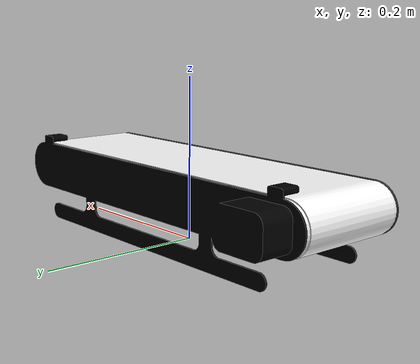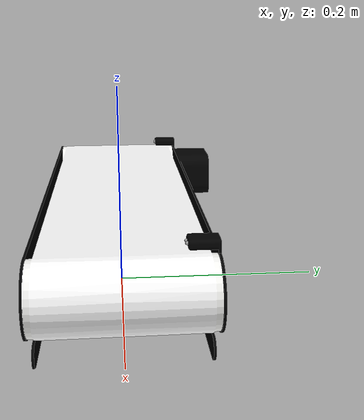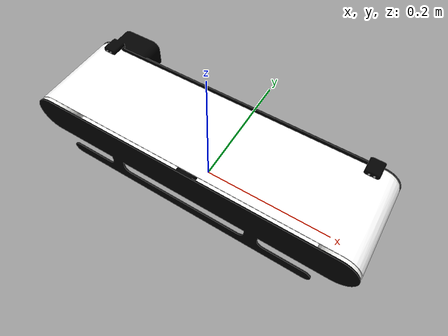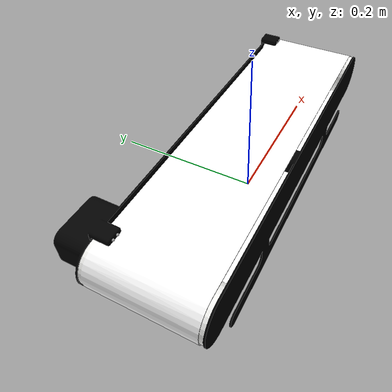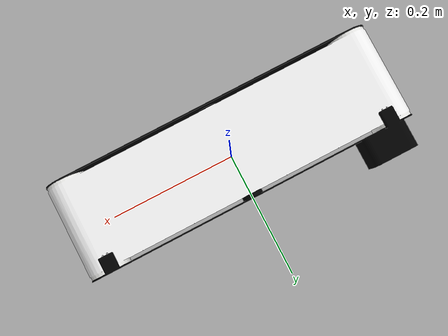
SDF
<?xml version="1.0" ?>
<sdf version="1.4">

    <model name="conveyor_belt">

        <model name="conveyorbelt_fixed">

            <static>true</static>

            <link name="belt_visual">
                <visual name="visual">
                    <geometry>
                        <mesh>
                            <scale>1 1 1</scale>
                            <uri>model://conveyor_belt/meshes/conveyor_belt.dae</uri>
                        </mesh>
                    </geometry>
                </visual>
                <collision name="collision">
                    <origin xyz="0.0 0.0 0" rpy="0.0 0.0 0.0"/>
                    <geometry>
                        <mesh>
                            <scale>1 1 1</scale>
                            <uri>model://conveyor_belt/meshes/conveyor_belt.dae</uri>
                        </mesh>
                    </geometry>
                </collision>
            </link>

        </model>

        <model name="conveyorbelt_moving">

            <allow_auto_disable>0</allow_auto_disable>
            <static>false</static>

            <pose>0 0 0.105 0 0 1.57</pose>

            <link name="belt_moving">
                <inertial>
                    <mass>100.0</mass>
                    <inertia>
                        <ixx>0.0</ixx>
                        <ixy>0.0</ixy>
                        <ixz>0.0</ixz>
                        <iyy>0.0</iyy>
                        <iyz>0.0</iyz>
                        <izz>0.0</izz>
                    </inertia>
                </inertial>
                <collision name="belt_collision">
                    <geometry>
                        <box>
                            <size>0.08 0.45 0.00001</size>
                        </box>
                    </geometry>
                    <surface>
                        <friction>
                            <ode>
                                <mu>100.0</mu>
                                <mu2>100.0</mu2>
                            </ode>
                            <torsional>
                                <coefficient>1000.0</coefficient>
                                <patch_radius>0.1</patch_radius>
                            </torsional>
                        </friction>
                    </surface>
                </collision>
            </link>

        </model>

        <joint name="belt_joint" type="prismatic">
            <parent>conveyorbelt_fixed::belt_visual</parent>
            <child>conveyorbelt_moving::belt_moving</child>
            <axis>
                <xyz>1 0 0</xyz>
                <limit>
                    <lower>0.0</lower>
                    <upper>0.01</upper>
                </limit>
            </axis>
        </joint>

        <plugin name="ros2_conveyorbelt_plugin" filename="libros2_conveyorbelt_plugin.so" >
            <ros>
                <namespace></namespace>
            </ros>
            <max_velocity>1.0</max_velocity>
            <publish_rate>1000</publish_rate>
        </plugin>

    </model>

</sdf>
